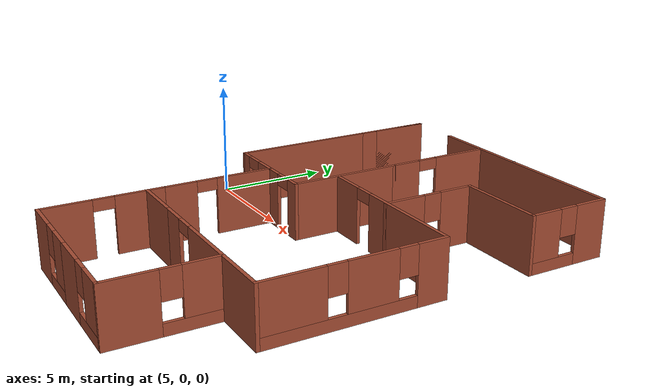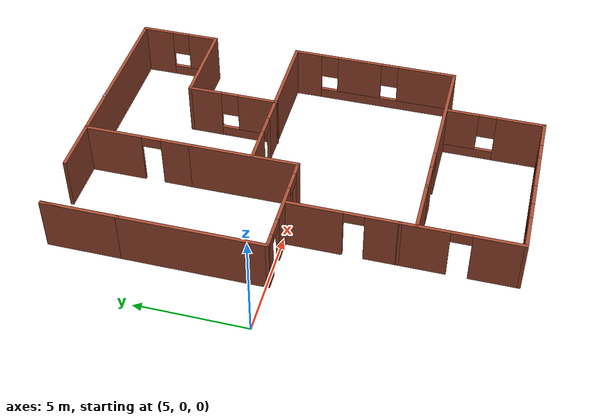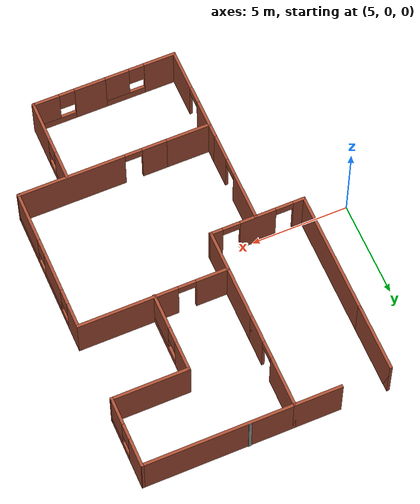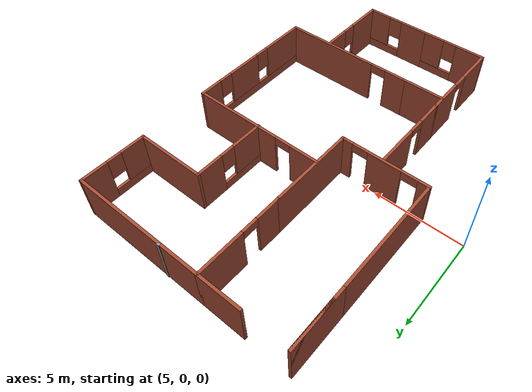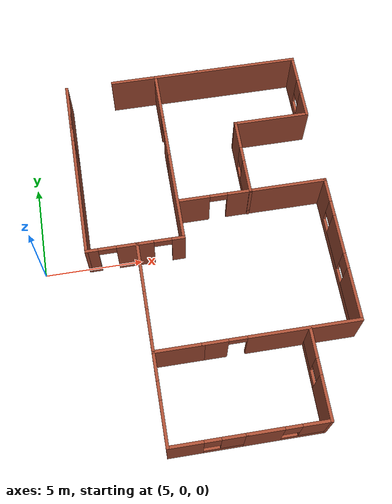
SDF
<sdf version="1.6">
 <model name="office">
  <pose>3.86148 -0.195271 0 0 -0 0</pose>
  <link name="Wall_15">
   <collision name="Wall_15_Collision">
    <geometry><box><size>2.5 0.15 2.5</size></box></geometry>
    <pose>0 0 1.25 0 -0 0</pose>
   </collision>
   <visual name="Wall_15_Visual">
    <pose>0 0 1.25 0 -0 0</pose>
    <geometry><box><size>2.5 0.15 2.5</size></box></geometry>
    <material>
     <script><uri>file://media/materials/scripts/gazebo.material</uri><name>Gazebo/Bricks</name></script>
     <ambient>1 1 1 1</ambient>
    </material>
    <meta><layer>0</layer></meta>
   </visual>
   <pose>7.14832 9.82933 0 0 -0 0</pose>
  </link>
  <link name="Wall_150">
   <collision name="Wall_150_Collision">
    <geometry><box><size>7.75 0.15 2.5</size></box></geometry>
    <pose>0 0 1.25 0 -0 0</pose>
   </collision>
   <visual name="Wall_150_Visual">
    <pose>0 0 1.25 0 -0 0</pose>
    <geometry><box><size>7.75 0.15 2.5</size></box></geometry>
    <material>
     <script><uri>file://media/materials/scripts/gazebo.material</uri><name>Gazebo/Bricks</name></script>
     <ambient>1 1 1 1</ambient>
    </material>
    <meta><layer>0</layer></meta>
   </visual>
   <pose>12.1233 9.82933 0 0 -0 0</pose>
  </link>
  <link name="Wall_151">
   <pose>15.9233 8.02933 0 0 0 -1.5708</pose>
   <visual name="Wall_151_Visual_0">
    <pose>-1.12763 0 1.25 0 -0 0</pose>
    <geometry><box><size>1.49474 0.15 2.5</size></box></geometry>
    <material>
     <script><uri>file://media/materials/scripts/gazebo.material</uri><name>Gazebo/Bricks</name></script>
     <ambient>1 1 1 1</ambient>
    </material>
    <meta><layer>0</layer></meta>
   </visual>
   <collision name="Wall_151_Collision_0">
    <geometry><box><size>1.49474 0.15 2.5</size></box></geometry>
    <pose>-1.12763 0 1.25 0 -0 0</pose>
   </collision>
   <visual name="Wall_151_Visual_1">
    <pose>0.747372 0 0.25 0 -0 0</pose>
    <geometry><box><size>2.25526 0.15 0.5</size></box></geometry>
    <material>
     <script><uri>file://media/materials/scripts/gazebo.material</uri><name>Gazebo/Bricks</name></script>
     <ambient>1 1 1 1</ambient>
    </material>
    <meta><layer>0</layer></meta>
   </visual>
   <collision name="Wall_151_Collision_1">
    <geometry><box><size>2.25526 0.15 0.5</size></box></geometry>
    <pose>0.747372 0 0.25 0 -0 0</pose>
   </collision>
   <visual name="Wall_151_Visual_2">
    <pose>1.14737 0 1.5 0 -0 0</pose>
    <geometry><box><size>1.45526 0.15 2</size></box></geometry>
    <material>
     <script><uri>file://media/materials/scripts/gazebo.material</uri><name>Gazebo/Bricks</name></script>
     <ambient>1 1 1 1</ambient>
    </material>
    <meta><layer>0</layer></meta>
   </visual>
   <collision name="Wall_151_Collision_2">
    <geometry><box><size>1.45526 0.15 2</size></box></geometry>
    <pose>1.14737 0 1.5 0 -0 0</pose>
   </collision>
   <visual name="Wall_151_Visual_3">
    <pose>0.019743 0 1.9 0 -0 0</pose>
    <geometry><box><size>0.8 0.15 1.2</size></box></geometry>
    <material>
     <script><uri>file://media/materials/scripts/gazebo.material</uri><name>Gazebo/Bricks</name></script>
     <ambient>1 1 1 1</ambient>
    </material>
    <meta><layer>0</layer></meta>
   </visual>
   <collision name="Wall_151_Collision_3">
    <geometry><box><size>0.8 0.15 1.2</size></box></geometry>
    <pose>0.019743 0 1.9 0 -0 0</pose>
   </collision>
  </link>
  <link name="Wall_152">
   <collision name="Wall_152_Collision">
    <geometry><box><size>4 0.15 2.5</size></box></geometry>
    <pose>0 0 1.25 0 -0 0</pose>
   </collision>
   <visual name="Wall_152_Visual">
    <pose>0 0 1.25 0 -0 0</pose>
    <geometry><box><size>4 0.15 2.5</size></box></geometry>
    <material>
     <script><uri>file://media/materials/scripts/gazebo.material</uri><name>Gazebo/Bricks</name></script>
     <ambient>1 1 1 1</ambient>
    </material>
    <meta><layer>0</layer></meta>
   </visual>
   <pose>13.9983 6.22933 0 0 -0 3.14159</pose>
  </link>
  <link name="Wall_156">
   <pose>12.0733 4.17933 0 0 0 -1.5708</pose>
   <visual name="Wall_156_Visual_0">
    <pose>-1.33794 0 1.25 0 -0 0</pose>
    <geometry><box><size>1.57411 0.15 2.5</size></box></geometry>
    <material>
     <script><uri>file://media/materials/scripts/gazebo.material</uri><name>Gazebo/Bricks</name></script>
     <ambient>1 1 1 1</ambient>
    </material>
    <meta><layer>0</layer></meta>
   </visual>
   <collision name="Wall_156_Collision_0">
    <geometry><box><size>1.57411 0.15 2.5</size></box></geometry>
    <pose>-1.33794 0 1.25 0 -0 0</pose>
   </collision>
   <visual name="Wall_156_Visual_1">
    <pose>0.787055 0 0.25 0 -0 0</pose>
    <geometry><box><size>2.67589 0.15 0.5</size></box></geometry>
    <material>
     <script><uri>file://media/materials/scripts/gazebo.material</uri><name>Gazebo/Bricks</name></script>
     <ambient>1 1 1 1</ambient>
    </material>
    <meta><layer>0</layer></meta>
   </visual>
   <collision name="Wall_156_Collision_1">
    <geometry><box><size>2.67589 0.15 0.5</size></box></geometry>
    <pose>0.787055 0 0.25 0 -0 0</pose>
   </collision>
   <visual name="Wall_156_Visual_2">
    <pose>1.18705 0 1.5 0 -0 0</pose>
    <geometry><box><size>1.87589 0.15 2</size></box></geometry>
    <material>
     <script><uri>file://media/materials/scripts/gazebo.material</uri><name>Gazebo/Bricks</name></script>
     <ambient>1 1 1 1</ambient>
    </material>
    <meta><layer>0</layer></meta>
   </visual>
   <collision name="Wall_156_Collision_2">
    <geometry><box><size>1.87589 0.15 2</size></box></geometry>
    <pose>1.18705 0 1.5 0 -0 0</pose>
   </collision>
   <visual name="Wall_156_Visual_3">
    <pose>-0.150889 0 1.9 0 -0 0</pose>
    <geometry><box><size>0.8 0.15 1.2</size></box></geometry>
    <material>
     <script><uri>file://media/materials/scripts/gazebo.material</uri><name>Gazebo/Bricks</name></script>
     <ambient>1 1 1 1</ambient>
    </material>
    <meta><layer>0</layer></meta>
   </visual>
   <collision name="Wall_156_Collision_3">
    <geometry><box><size>0.8 0.15 1.2</size></box></geometry>
    <pose>-0.150889 0 1.9 0 -0 0</pose>
   </collision>
  </link>
  <link name="Wall_16">
   <pose>8.32342 7.4043 0 0 0 -1.57075</pose>
   <visual name="Wall_16_Visual_0">
    <pose>-1.16357 0 1.25 0 -0 0</pose>
    <geometry><box><size>2.67286 0.15 2.5</size></box></geometry>
    <material>
     <script><uri>file://media/materials/scripts/gazebo.material</uri><name>Gazebo/Bricks</name></script>
     <ambient>0 0 1 1</ambient>
    </material>
    <meta><layer>0</layer></meta>
   </visual>
   <collision name="Wall_16_Collision_0">
    <geometry><box><size>2.67286 0.15 2.5</size></box></geometry>
    <pose>-1.16357 0 1.25 0 -0 0</pose>
   </collision>
   <visual name="Wall_16_Visual_1">
    <pose>1.78643 0 1.25 0 -0 0</pose>
    <geometry><box><size>1.42714 0.15 2.5</size></box></geometry>
    <material>
     <script><uri>file://media/materials/scripts/gazebo.material</uri><name>Gazebo/Bricks</name></script>
     <ambient>0 0 1 1</ambient>
    </material>
    <meta><layer>0</layer></meta>
   </visual>
   <collision name="Wall_16_Collision_1">
    <geometry><box><size>1.42714 0.15 2.5</size></box></geometry>
    <pose>1.78643 0 1.25 0 -0 0</pose>
   </collision>
   <visual name="Wall_16_Visual_2">
    <pose>0.622857 0 2.25 0 -0 0</pose>
    <geometry><box><size>0.9 0.15 0.5</size></box></geometry>
    <material>
     <script><uri>file://media/materials/scripts/gazebo.material</uri><name>Gazebo/Bricks</name></script>
     <ambient>0 0 1 1</ambient>
    </material>
    <meta><layer>0</layer></meta>
   </visual>
   <collision name="Wall_16_Collision_2">
    <geometry><box><size>0.9 0.15 0.5</size></box></geometry>
    <pose>0.622857 0 2.25 0 -0 0</pose>
   </collision>
  </link>
  <link name="Wall_17">
   <collision name="Wall_17_Collision">
    <geometry><box><size>5 0.15 2.5</size></box></geometry>
    <pose>0 0 1.25 0 -0 0</pose>
   </collision>
   <visual name="Wall_17_Visual">
    <pose>0 0 1.25 0 -0 0</pose>
    <geometry><box><size>5 0.15 2.5</size></box></geometry>
    <material>
     <script><uri>file://media/materials/scripts/gazebo.material</uri><name>Gazebo/Bricks</name></script>
     <ambient>0 0 1 1</ambient>
    </material>
    <meta><layer>0</layer></meta>
   </visual>
   <pose>8.32352 2.55427 0 0 0 -1.5708</pose>
  </link>
  <link name="Wall_18">
   <pose>5.89852 0.129271 0 0 -0 3.14159</pose>
   <visual name="Wall_18_Visual_0">
    <pose>-2.16272 0 1.25 0 -0 0</pose>
    <geometry><box><size>0.674563 0.15 2.5</size></box></geometry>
    <material>
     <script><uri>file://media/materials/scripts/gazebo.material</uri><name>Gazebo/Bricks</name></script>
     <ambient>0 0 1 1</ambient>
    </material>
    <meta><layer>0</layer></meta>
   </visual>
   <collision name="Wall_18_Collision_0">
    <geometry><box><size>0.674563 0.15 2.5</size></box></geometry>
    <pose>-2.16272 0 1.25 0 -0 0</pose>
   </collision>
   <visual name="Wall_18_Visual_1">
    <pose>0.007773 0 1.25 0 -0 0</pose>
    <geometry><box><size>1.86642 0.15 2.5</size></box></geometry>
    <material>
     <script><uri>file://media/materials/scripts/gazebo.material</uri><name>Gazebo/Bricks</name></script>
     <ambient>0 0 1 1</ambient>
    </material>
    <meta><layer>0</layer></meta>
   </visual>
   <collision name="Wall_18_Collision_1">
    <geometry><box><size>1.86642 0.15 2.5</size></box></geometry>
    <pose>0.007773 0 1.25 0 -0 0</pose>
   </collision>
   <visual name="Wall_18_Visual_2">
    <pose>2.17049 0 1.25 0 -0 0</pose>
    <geometry><box><size>0.659016 0.15 2.5</size></box></geometry>
    <material>
     <script><uri>file://media/materials/scripts/gazebo.material</uri><name>Gazebo/Bricks</name></script>
     <ambient>0 0 1 1</ambient>
    </material>
    <meta><layer>0</layer></meta>
   </visual>
   <collision name="Wall_18_Collision_2">
    <geometry><box><size>0.659016 0.15 2.5</size></box></geometry>
    <pose>2.17049 0 1.25 0 -0 0</pose>
   </collision>
   <visual name="Wall_18_Visual_3">
    <pose>-1.37544 0 2.25 0 -0 0</pose>
    <geometry><box><size>0.9 0.15 0.5</size></box></geometry>
    <material>
     <script><uri>file://media/materials/scripts/gazebo.material</uri><name>Gazebo/Bricks</name></script>
     <ambient>0 0 1 1</ambient>
    </material>
    <meta><layer>0</layer></meta>
   </visual>
   <collision name="Wall_18_Collision_3">
    <geometry><box><size>0.9 0.15 0.5</size></box></geometry>
    <pose>-1.37544 0 2.25 0 -0 0</pose>
   </collision>
   <visual name="Wall_18_Visual_4">
    <pose>1.39098 0 2.25 0 -0 0</pose>
    <geometry><box><size>0.9 0.15 0.5</size></box></geometry>
    <material>
     <script><uri>file://media/materials/scripts/gazebo.material</uri><name>Gazebo/Bricks</name></script>
     <ambient>0 0 1 1</ambient>
    </material>
    <meta><layer>0</layer></meta>
   </visual>
   <collision name="Wall_18_Collision_4">
    <geometry><box><size>0.9 0.15 0.5</size></box></geometry>
    <pose>1.39098 0 2.25 0 -0 0</pose>
   </collision>
  </link>
  <link name="Wall_19">
   <collision name="Wall_19_Collision">
    <geometry><box><size>6.5 0.15 2.5</size></box></geometry>
    <pose>0 0 1.25 0 -0 0</pose>
   </collision>
   <visual name="Wall_19_Visual">
    <pose>0 0 1.25 0 -0 0</pose>
    <geometry><box><size>6.5 0.15 2.5</size></box></geometry>
    <material>
     <script><uri>file://media/materials/scripts/gazebo.material</uri><name>Gazebo/Bricks</name></script>
     <ambient>0 0 1 1</ambient>
    </material>
    <meta><layer>0</layer></meta>
   </visual>
   <pose>3.47352 3.30427 0 0 -0 1.5708</pose>
  </link>
  <link name="Wall_20">
   <pose>3.47342 8.1543 0 0 -0 1.57086</pose>
   <visual name="Wall_20_Visual_0">
    <pose>0 0 1.25 0 -0 0</pose>
    <geometry><box><size>3.5 0.15 2.5</size></box></geometry>
    <material>
     <script><uri>file://media/materials/scripts/gazebo.material</uri><name>Gazebo/Bricks</name></script>
     <ambient>0 0 1 1</ambient>
    </material>
    <meta><layer>0</layer></meta>
   </visual>
   <collision name="Wall_20_Collision_0">
    <geometry><box><size>3.5 0.15 2.5</size></box></geometry>
    <pose>0 0 1.25 0 -0 0</pose>
   </collision>
   <visual name="Wall_20_Visual_1">
    <pose>0.400263 0 1.25 0 -0 0</pose>
    <geometry><box><size>2.69948 0.15 2.5</size></box></geometry>
    <material>
     <script><uri>file://media/materials/scripts/gazebo.material</uri><name>Gazebo/Bricks</name></script>
     <ambient>0 0 1 1</ambient>
    </material>
    <meta><layer>0</layer></meta>
   </visual>
   <collision name="Wall_20_Collision_1">
    <geometry><box><size>2.69948 0.15 2.5</size></box></geometry>
    <pose>0.400263 0 1.25 0 -0 0</pose>
   </collision>
  </link>
  <link name="Wall_22">
   <pose>5.99314 -2.33064 0 0 0 -1.5708</pose>
   <visual name="Wall_22_Visual_0">
    <pose>-1.21642 0 1.25 0 -0 0</pose>
    <geometry><box><size>2.56715 0.15 2.5</size></box></geometry>
    <material>
     <script><uri>file://media/materials/scripts/gazebo.material</uri><name>Gazebo/Bricks</name></script>
     <ambient>1 1 1 1</ambient>
    </material>
    <meta><layer>0</layer></meta>
   </visual>
   <collision name="Wall_22_Collision_0">
    <geometry><box><size>2.56715 0.15 2.5</size></box></geometry>
    <pose>-1.21642 0 1.25 0 -0 0</pose>
   </collision>
   <visual name="Wall_22_Visual_1">
    <pose>1.73358 0 1.25 0 -0 0</pose>
    <geometry><box><size>1.53285 0.15 2.5</size></box></geometry>
    <material>
     <script><uri>file://media/materials/scripts/gazebo.material</uri><name>Gazebo/Bricks</name></script>
     <ambient>1 1 1 1</ambient>
    </material>
    <meta><layer>0</layer></meta>
   </visual>
   <collision name="Wall_22_Collision_1">
    <geometry><box><size>1.53285 0.15 2.5</size></box></geometry>
    <pose>1.73358 0 1.25 0 -0 0</pose>
   </collision>
   <visual name="Wall_22_Visual_2">
    <pose>0.517152 0 2.25 0 -0 0</pose>
    <geometry><box><size>0.9 0.15 0.5</size></box></geometry>
    <material>
     <script><uri>file://media/materials/scripts/gazebo.material</uri><name>Gazebo/Bricks</name></script>
     <ambient>1 1 1 1</ambient>
    </material>
    <meta><layer>0</layer></meta>
   </visual>
   <collision name="Wall_22_Collision_2">
    <geometry><box><size>0.9 0.15 0.5</size></box></geometry>
    <pose>0.517152 0 2.25 0 -0 0</pose>
   </collision>
  </link>
  <link name="Wall_23">
   <pose>5.99333 -7.30568 0 0 0 -1.57072</pose>
   <visual name="Wall_23_Visual_0">
    <pose>-1.55338 0 1.25 0 -0 0</pose>
    <geometry><box><size>2.14324 0.15 2.5</size></box></geometry>
    <material>
     <script><uri>file://media/materials/scripts/gazebo.material</uri><name>Gazebo/Bricks</name></script>
     <ambient>1 1 1 1</ambient>
    </material>
    <meta><layer>0</layer></meta>
   </visual>
   <collision name="Wall_23_Collision_0">
    <geometry><box><size>2.14324 0.15 2.5</size></box></geometry>
    <pose>-1.55338 0 1.25 0 -0 0</pose>
   </collision>
   <visual name="Wall_23_Visual_1">
    <pose>1.52162 0 1.25 0 -0 0</pose>
    <geometry><box><size>2.20676 0.15 2.5</size></box></geometry>
    <material>
     <script><uri>file://media/materials/scripts/gazebo.material</uri><name>Gazebo/Bricks</name></script>
     <ambient>1 1 1 1</ambient>
    </material>
    <meta><layer>0</layer></meta>
   </visual>
   <collision name="Wall_23_Collision_1">
    <geometry><box><size>2.20676 0.15 2.5</size></box></geometry>
    <pose>1.52162 0 1.25 0 -0 0</pose>
   </collision>
   <visual name="Wall_23_Visual_2">
    <pose>-0.031758 0 2.25 0 -0 0</pose>
    <geometry><box><size>0.9 0.15 0.5</size></box></geometry>
    <material>
     <script><uri>file://media/materials/scripts/gazebo.material</uri><name>Gazebo/Bricks</name></script>
     <ambient>1 1 1 1</ambient>
    </material>
    <meta><layer>0</layer></meta>
   </visual>
   <collision name="Wall_23_Collision_2">
    <geometry><box><size>0.9 0.15 0.5</size></box></geometry>
    <pose>-0.031758 0 2.25 0 -0 0</pose>
   </collision>
  </link>
  <link name="Wall_38">
   <collision name="Wall_38_Collision">
    <geometry><box><size>0.16 0.15 2.5</size></box></geometry>
    <pose>0 0 1.25 0 -0 0</pose>
   </collision>
   <visual name="Wall_38_Visual">
    <pose>0 0 1.25 0 -0 0</pose>
    <geometry><box><size>0.16 0.15 2.5</size></box></geometry>
    <material>
     <script><uri>file://media/materials/scripts/gazebo.material</uri><name>Gazebo/Grey</name></script>
     <ambient>0 0 0 0</ambient>
    </material>
    <meta><layer>0</layer></meta>
   </visual>
   <pose>10.5783 9.85593 0 0 -0 0</pose>
  </link>
  <link name="Wall_39">
   <pose>12.1535 2.1646 0 0 -0 0</pose>
   <visual name="Wall_39_Visual_0">
    <pose>-3.02338 0 1.25 0 -0 0</pose>
    <geometry><box><size>1.70324 0.15 2.5</size></box></geometry>
    <material>
     <script><uri>file://media/materials/scripts/gazebo.material</uri><name>Gazebo/Bricks</name></script>
     <ambient>1 1 1 1</ambient>
    </material>
    <meta><layer>0</layer></meta>
   </visual>
   <collision name="Wall_39_Collision_0">
    <geometry><box><size>1.70324 0.15 2.5</size></box></geometry>
    <pose>-3.02338 0 1.25 0 -0 0</pose>
   </collision>
   <visual name="Wall_39_Visual_1">
    <pose>1.30162 0 1.25 0 -0 0</pose>
    <geometry><box><size>5.14676 0.15 2.5</size></box></geometry>
    <material>
     <script><uri>file://media/materials/scripts/gazebo.material</uri><name>Gazebo/Bricks</name></script>
     <ambient>1 1 1 1</ambient>
    </material>
    <meta><layer>0</layer></meta>
   </visual>
   <collision name="Wall_39_Collision_1">
    <geometry><box><size>5.14676 0.15 2.5</size></box></geometry>
    <pose>1.30162 0 1.25 0 -0 0</pose>
   </collision>
   <visual name="Wall_39_Visual_2">
    <pose>-1.72176 0 2.25 0 -0 0</pose>
    <geometry><box><size>0.9 0.15 0.5</size></box></geometry>
    <material>
     <script><uri>file://media/materials/scripts/gazebo.material</uri><name>Gazebo/Bricks</name></script>
     <ambient>1 1 1 1</ambient>
    </material>
    <meta><layer>0</layer></meta>
   </visual>
   <collision name="Wall_39_Collision_2">
    <geometry><box><size>0.9 0.15 0.5</size></box></geometry>
    <pose>-1.72176 0 2.25 0 -0 0</pose>
   </collision>
  </link>
  <link name="Wall_40">
   <pose>15.9535 -1.6354 0 0 0 -1.5708</pose>
   <visual name="Wall_40_Visual_0">
    <pose>-3.20987 0 1.25 0 -0 0</pose>
    <geometry><box><size>1.33026 0.15 2.5</size></box></geometry>
    <material>
     <script><uri>file://media/materials/scripts/gazebo.material</uri><name>Gazebo/Bricks</name></script>
     <ambient>1 1 1 1</ambient>
    </material>
    <meta><layer>0</layer></meta>
   </visual>
   <collision name="Wall_40_Collision_0">
    <geometry><box><size>1.33026 0.15 2.5</size></box></geometry>
    <pose>-3.20987 0 1.25 0 -0 0</pose>
   </collision>
   <visual name="Wall_40_Visual_1">
    <pose>0.665129 0 0.25 0 -0 0</pose>
    <geometry><box><size>6.41974 0.15 0.5</size></box></geometry>
    <material>
     <script><uri>file://media/materials/scripts/gazebo.material</uri><name>Gazebo/Bricks</name></script>
     <ambient>1 1 1 1</ambient>
    </material>
    <meta><layer>0</layer></meta>
   </visual>
   <collision name="Wall_40_Collision_1">
    <geometry><box><size>6.41974 0.15 0.5</size></box></geometry>
    <pose>0.665129 0 0.25 0 -0 0</pose>
   </collision>
   <visual name="Wall_40_Visual_2">
    <pose>-0.694223 0 1.5 0 -0 0</pose>
    <geometry><box><size>2.10104 0.15 2</size></box></geometry>
    <material>
     <script><uri>file://media/materials/scripts/gazebo.material</uri><name>Gazebo/Bricks</name></script>
     <ambient>1 1 1 1</ambient>
    </material>
    <meta><layer>0</layer></meta>
   </visual>
   <collision name="Wall_40_Collision_2">
    <geometry><box><size>2.10104 0.15 2</size></box></geometry>
    <pose>-0.694223 0 1.5 0 -0 0</pose>
   </collision>
   <visual name="Wall_40_Visual_3">
    <pose>2.51565 0 1.5 0 -0 0</pose>
    <geometry><box><size>2.7187 0.15 2</size></box></geometry>
    <material>
     <script><uri>file://media/materials/scripts/gazebo.material</uri><name>Gazebo/Bricks</name></script>
     <ambient>1 1 1 1</ambient>
    </material>
    <meta><layer>0</layer></meta>
   </visual>
   <collision name="Wall_40_Collision_3">
    <geometry><box><size>2.7187 0.15 2</size></box></geometry>
    <pose>2.51565 0 1.5 0 -0 0</pose>
   </collision>
   <visual name="Wall_40_Visual_4">
    <pose>-2.14474 0 1.9 0 -0 0</pose>
    <geometry><box><size>0.8 0.15 1.2</size></box></geometry>
    <material>
     <script><uri>file://media/materials/scripts/gazebo.material</uri><name>Gazebo/Bricks</name></script>
     <ambient>1 1 1 1</ambient>
    </material>
    <meta><layer>0</layer></meta>
   </visual>
   <collision name="Wall_40_Collision_4">
    <geometry><box><size>0.8 0.15 1.2</size></box></geometry>
    <pose>-2.14474 0 1.9 0 -0 0</pose>
   </collision>
   <visual name="Wall_40_Visual_5">
    <pose>0.756297 0 1.9 0 -0 0</pose>
    <geometry><box><size>0.8 0.15 1.2</size></box></geometry>
    <material>
     <script><uri>file://media/materials/scripts/gazebo.material</uri><name>Gazebo/Bricks</name></script>
     <ambient>1 1 1 1</ambient>
    </material>
    <meta><layer>0</layer></meta>
   </visual>
   <collision name="Wall_40_Collision_5">
    <geometry><box><size>0.8 0.15 1.2</size></box></geometry>
    <pose>0.756297 0 1.9 0 -0 0</pose>
   </collision>
  </link>
  <link name="Wall_41">
   <pose>12.1535 -5.4354 0 0 -0 3.14159</pose>
   <visual name="Wall_41_Visual_0">
    <pose>-1.08935 0 1.25 0 -0 0</pose>
    <geometry><box><size>5.5713 0.15 2.5</size></box></geometry>
    <material>
     <script><uri>file://media/materials/scripts/gazebo.material</uri><name>Gazebo/Bricks</name></script>
     <ambient>1 1 1 1</ambient>
    </material>
    <meta><layer>0</layer></meta>
   </visual>
   <collision name="Wall_41_Collision_0">
    <geometry><box><size>5.5713 0.15 2.5</size></box></geometry>
    <pose>-1.08935 0 1.25 0 -0 0</pose>
   </collision>
   <visual name="Wall_41_Visual_1">
    <pose>3.23565 0 1.25 0 -0 0</pose>
    <geometry><box><size>1.2787 0.15 2.5</size></box></geometry>
    <material>
     <script><uri>file://media/materials/scripts/gazebo.material</uri><name>Gazebo/Bricks</name></script>
     <ambient>1 1 1 1</ambient>
    </material>
    <meta><layer>0</layer></meta>
   </visual>
   <collision name="Wall_41_Collision_1">
    <geometry><box><size>1.2787 0.15 2.5</size></box></geometry>
    <pose>3.23565 0 1.25 0 -0 0</pose>
   </collision>
   <visual name="Wall_41_Visual_2">
    <pose>2.1463 0 2.25 0 -0 0</pose>
    <geometry><box><size>0.9 0.15 0.5</size></box></geometry>
    <material>
     <script><uri>file://media/materials/scripts/gazebo.material</uri><name>Gazebo/Bricks</name></script>
     <ambient>1 1 1 1</ambient>
    </material>
    <meta><layer>0</layer></meta>
   </visual>
   <collision name="Wall_41_Collision_2">
    <geometry><box><size>0.9 0.15 0.5</size></box></geometry>
    <pose>2.1463 0 2.25 0 -0 0</pose>
   </collision>
  </link>
  <link name="Wall_42">
   <collision name="Wall_42_Collision">
    <geometry><box><size>2.5 0.15 2.5</size></box></geometry>
    <pose>0 0 1.25 0 -0 0</pose>
   </collision>
   <visual name="Wall_42_Visual">
    <pose>0 0 1.25 0 -0 0</pose>
    <geometry><box><size>2.5 0.15 2.5</size></box></geometry>
    <material>
     <script><uri>file://media/materials/scripts/gazebo.material</uri><name>Gazebo/Bricks</name></script>
     <ambient>1 1 1 1</ambient>
    </material>
    <meta><layer>0</layer></meta>
   </visual>
   <pose>7.17848 -5.4354 0 0 -0 3.14159</pose>
  </link>
  <link name="Wall_44">
   <pose>7.79333 -9.85568 0 0 -0 2.5e-05</pose>
   <visual name="Wall_44_Visual_0">
    <pose>-1.02118 0 1.25 0 -0 0</pose>
    <geometry><box><size>1.70765 0.15 2.5</size></box></geometry>
    <material>
     <script><uri>file://media/materials/scripts/gazebo.material</uri><name>Gazebo/Bricks</name></script>
     <ambient>1 1 1 1</ambient>
    </material>
    <meta><layer>0</layer></meta>
   </visual>
   <collision name="Wall_44_Collision_0">
    <geometry><box><size>1.70765 0.15 2.5</size></box></geometry>
    <pose>-1.02118 0 1.25 0 -0 0</pose>
   </collision>
   <visual name="Wall_44_Visual_1">
    <pose>0.853823 0 0.25 0 -0 0</pose>
    <geometry><box><size>2.04235 0.15 0.5</size></box></geometry>
    <material>
     <script><uri>file://media/materials/scripts/gazebo.material</uri><name>Gazebo/Bricks</name></script>
     <ambient>1 1 1 1</ambient>
    </material>
    <meta><layer>0</layer></meta>
   </visual>
   <collision name="Wall_44_Collision_1">
    <geometry><box><size>2.04235 0.15 0.5</size></box></geometry>
    <pose>0.853823 0 0.25 0 -0 0</pose>
   </collision>
   <visual name="Wall_44_Visual_2">
    <pose>1.25382 0 1.5 0 -0 0</pose>
    <geometry><box><size>1.24235 0.15 2</size></box></geometry>
    <material>
     <script><uri>file://media/materials/scripts/gazebo.material</uri><name>Gazebo/Bricks</name></script>
     <ambient>1 1 1 1</ambient>
    </material>
    <meta><layer>0</layer></meta>
   </visual>
   <collision name="Wall_44_Collision_2">
    <geometry><box><size>1.24235 0.15 2</size></box></geometry>
    <pose>1.25382 0 1.5 0 -0 0</pose>
   </collision>
   <visual name="Wall_44_Visual_3">
    <pose>0.232647 0 1.9 0 -0 0</pose>
    <geometry><box><size>0.8 0.15 1.2</size></box></geometry>
    <material>
     <script><uri>file://media/materials/scripts/gazebo.material</uri><name>Gazebo/Bricks</name></script>
     <ambient>1 1 1 1</ambient>
    </material>
    <meta><layer>0</layer></meta>
   </visual>
   <collision name="Wall_44_Collision_3">
    <geometry><box><size>0.8 0.15 1.2</size></box></geometry>
    <pose>0.232647 0 1.9 0 -0 0</pose>
   </collision>
  </link>
  <link name="Wall_45">
   <pose>11.5181 -9.85564 0 0 -0 0</pose>
   <visual name="Wall_45_Visual_0">
    <pose>-1.1064 0 1.25 0 -0 0</pose>
    <geometry><box><size>1.78721 0.15 2.5</size></box></geometry>
    <material>
     <script><uri>file://media/materials/scripts/gazebo.material</uri><name>Gazebo/Bricks</name></script>
     <ambient>1 1 1 1</ambient>
    </material>
    <meta><layer>0</layer></meta>
   </visual>
   <collision name="Wall_45_Collision_0">
    <geometry><box><size>1.78721 0.15 2.5</size></box></geometry>
    <pose>-1.1064 0 1.25 0 -0 0</pose>
   </collision>
   <visual name="Wall_45_Visual_1">
    <pose>0.893603 0 0.25 0 -0 0</pose>
    <geometry><box><size>2.21279 0.15 0.5</size></box></geometry>
    <material>
     <script><uri>file://media/materials/scripts/gazebo.material</uri><name>Gazebo/Bricks</name></script>
     <ambient>1 1 1 1</ambient>
    </material>
    <meta><layer>0</layer></meta>
   </visual>
   <collision name="Wall_45_Collision_1">
    <geometry><box><size>2.21279 0.15 0.5</size></box></geometry>
    <pose>0.893603 0 0.25 0 -0 0</pose>
   </collision>
   <visual name="Wall_45_Visual_2">
    <pose>1.2936 0 1.5 0 -0 0</pose>
    <geometry><box><size>1.41279 0.15 2</size></box></geometry>
    <material>
     <script><uri>file://media/materials/scripts/gazebo.material</uri><name>Gazebo/Bricks</name></script>
     <ambient>1 1 1 1</ambient>
    </material>
    <meta><layer>0</layer></meta>
   </visual>
   <collision name="Wall_45_Collision_2">
    <geometry><box><size>1.41279 0.15 2</size></box></geometry>
    <pose>1.2936 0 1.5 0 -0 0</pose>
   </collision>
   <visual name="Wall_45_Visual_3">
    <pose>0.187206 0 1.9 0 -0 0</pose>
    <geometry><box><size>0.8 0.15 1.2</size></box></geometry>
    <material>
     <script><uri>file://media/materials/scripts/gazebo.material</uri><name>Gazebo/Bricks</name></script>
     <ambient>1 1 1 1</ambient>
    </material>
    <meta><layer>0</layer></meta>
   </visual>
   <collision name="Wall_45_Collision_3">
    <geometry><box><size>0.8 0.15 1.2</size></box></geometry>
    <pose>0.187206 0 1.9 0 -0 0</pose>
   </collision>
  </link>
  <link name="Wall_46">
   <pose>13.4431 -7.68064 0 0 -0 1.5708</pose>
   <visual name="Wall_46_Visual_0">
    <pose>-1.15703 0 1.25 0 -0 0</pose>
    <geometry><box><size>2.18594 0.15 2.5</size></box></geometry>
    <material>
     <script><uri>file://media/materials/scripts/gazebo.material</uri><name>Gazebo/Bricks</name></script>
     <ambient>1 1 1 1</ambient>
    </material>
    <meta><layer>0</layer></meta>
   </visual>
   <collision name="Wall_46_Collision_0">
    <geometry><box><size>2.18594 0.15 2.5</size></box></geometry>
    <pose>-1.15703 0 1.25 0 -0 0</pose>
   </collision>
   <visual name="Wall_46_Visual_1">
    <pose>1.09297 0 0.25 0 -0 0</pose>
    <geometry><box><size>2.31406 0.15 0.5</size></box></geometry>
    <material>
     <script><uri>file://media/materials/scripts/gazebo.material</uri><name>Gazebo/Bricks</name></script>
     <ambient>1 1 1 1</ambient>
    </material>
    <meta><layer>0</layer></meta>
   </visual>
   <collision name="Wall_46_Collision_1">
    <geometry><box><size>2.31406 0.15 0.5</size></box></geometry>
    <pose>1.09297 0 0.25 0 -0 0</pose>
   </collision>
   <visual name="Wall_46_Visual_2">
    <pose>1.49297 0 1.5 0 -0 0</pose>
    <geometry><box><size>1.51406 0.15 2</size></box></geometry>
    <material>
     <script><uri>file://media/materials/scripts/gazebo.material</uri><name>Gazebo/Bricks</name></script>
     <ambient>1 1 1 1</ambient>
    </material>
    <meta><layer>0</layer></meta>
   </visual>
   <collision name="Wall_46_Collision_2">
    <geometry><box><size>1.51406 0.15 2</size></box></geometry>
    <pose>1.49297 0 1.5 0 -0 0</pose>
   </collision>
   <visual name="Wall_46_Visual_3">
    <pose>0.335944 0 1.9 0 -0 0</pose>
    <geometry><box><size>0.8 0.15 1.2</size></box></geometry>
    <material>
     <script><uri>file://media/materials/scripts/gazebo.material</uri><name>Gazebo/Bricks</name></script>
     <ambient>1 1 1 1</ambient>
    </material>
    <meta><layer>0</layer></meta>
   </visual>
   <collision name="Wall_46_Collision_3">
    <geometry><box><size>0.8 0.15 1.2</size></box></geometry>
    <pose>0.335944 0 1.9 0 -0 0</pose>
   </collision>
  </link>
  <static>1</static>
 </model>
</sdf>
